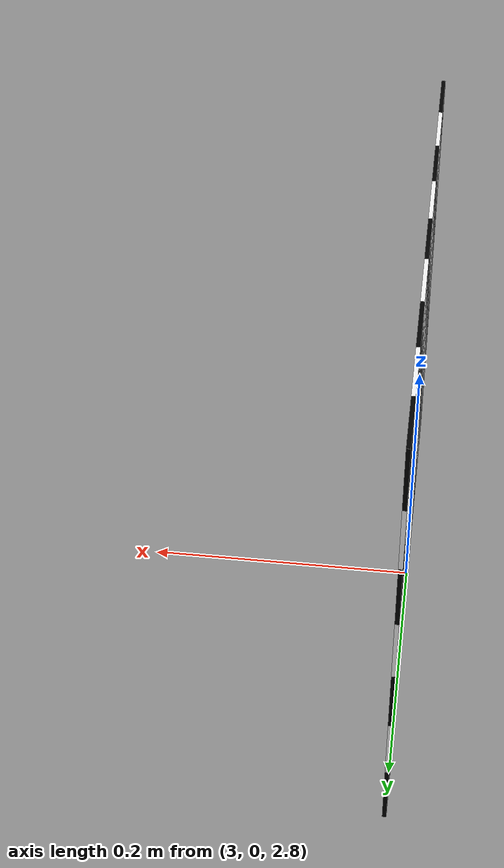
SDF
<sdf version="1.6">
 <world name="default">
  <light name="sun" type="directional">
   <pose>0 0 10 0 -0 0</pose>
   <diffuse>0.8 0.8 0.8 1</diffuse>
   <specular>0.2 0.2 0.2 1</specular>
   <attenuation>
    <range>1000</range>
    <constant>0.9</constant>
    <linear>0.01</linear>
    <quadratic>0.001</quadratic>
   </attenuation>
   <direction>-0.5 0.1 -0.9</direction>
  </light>
  <model name="ground_plane">
   <static>1</static>
   <link name="link">
    <collision name="collision">
     <geometry><plane><normal>0 0 1</normal><size>100 100</size></plane></geometry>
     <surface><friction><ode><mu>100</mu><mu2>50</mu2></ode></friction></surface>
    </collision>
    <visual name="visual">
     <cast_shadows>0</cast_shadows>
     <geometry><plane><normal>0 0 1</normal><size>100 100</size></plane></geometry>
     <material>
      <script><uri>file://media/materials/scripts/gazebo.material</uri><name>Gazebo/Grey</name></script>
     </material>
    </visual>
   </link>
  </model>
  <gravity>0 0 -9.8</gravity>
  <magnetic_field>6e-06 2.3e-05 -4.2e-05</magnetic_field>
  <atmosphere type="adiabatic"/>
  <physics name="default_physics" default="0" type="ode">
   <max_step_size>0.001</max_step_size>
   <real_time_factor>1</real_time_factor>
   <real_time_update_rate>1000</real_time_update_rate>
  </physics>
  <scene><ambient>0.4 0.4 0.4 1</ambient><background>0.7 0.7 0.7 1</background><shadows>1</shadows></scene>
  <spherical_coordinates>
   <surface_model>EARTH_WGS84</surface_model>
   <latitude_deg>0</latitude_deg>
   <longitude_deg>0</longitude_deg>
   <elevation>0</elevation>
   <heading_deg>0</heading_deg>
  </spherical_coordinates>
  <light name="user_point_light_0_clone" type="point">
   <pose>41.2892 -1.28374 3.74849 0 -0 0</pose>
   <diffuse>0.5 0.5 0.5 1</diffuse>
   <specular>0.1 0.1 0.1 1</specular>
   <direction>0 0 -1</direction>
   <attenuation>
    <range>20</range>
    <constant>0.5</constant>
    <linear>0.01</linear>
    <quadratic>0.001</quadratic>
   </attenuation>
  </light>
  <light name="user_point_light_0_clone_0" type="point">
   <pose>41.067 7.07823 3.74849 0 -0 0</pose>
   <diffuse>0.5 0.5 0.5 1</diffuse>
   <specular>0.1 0.1 0.1 1</specular>
   <direction>0 0 -1</direction>
   <attenuation>
    <range>20</range>
    <constant>0.5</constant>
    <linear>0.01</linear>
    <quadratic>0.001</quadratic>
   </attenuation>
  </light>
  <light name="user_point_light_0_clone_1" type="point">
   <pose>36.836 16.0083 3.74849 0 -0 0</pose>
   <diffuse>0.5 0.5 0.5 1</diffuse>
   <specular>0.1 0.1 0.1 1</specular>
   <direction>0 0 -1</direction>
   <attenuation>
    <range>20</range>
    <constant>0.5</constant>
    <linear>0.01</linear>
    <quadratic>0.001</quadratic>
   </attenuation>
  </light>
  <light name="user_point_light_0_clone_2" type="point">
   <pose>26.0986 16.0717 3.74849 0 -0 0</pose>
   <diffuse>0.5 0.5 0.5 1</diffuse>
   <specular>0.1 0.1 0.1 1</specular>
   <direction>0 0 -1</direction>
   <attenuation>
    <range>20</range>
    <constant>0.5</constant>
    <linear>0.01</linear>
    <quadratic>0.001</quadratic>
   </attenuation>
  </light>
  <light name="user_point_light_0_clone_3" type="point">
   <pose>21.2222 7.50988 3.74849 0 -0 0</pose>
   <diffuse>0.5 0.5 0.5 1</diffuse>
   <specular>0.1 0.1 0.1 1</specular>
   <direction>0 0 -1</direction>
   <attenuation>
    <range>20</range>
    <constant>0.5</constant>
    <linear>0.01</linear>
    <quadratic>0.001</quadratic>
   </attenuation>
  </light>
  <light name="user_point_light_0_clone_4" type="point">
   <pose>6.23348 7.75812 3.74849 0 -0 0</pose>
   <diffuse>0.5 0.5 0.5 1</diffuse>
   <specular>0.1 0.1 0.1 1</specular>
   <direction>0 0 -1</direction>
   <attenuation>
    <range>20</range>
    <constant>0.5</constant>
    <linear>0.01</linear>
    <quadratic>0.001</quadratic>
   </attenuation>
  </light>
  <light name="user_point_light_0_clone_5" type="point">
   <pose>5.95468 -7.08765 3.74849 0 -0 0</pose>
   <diffuse>0.5 0.5 0.5 1</diffuse>
   <specular>0.1 0.1 0.1 1</specular>
   <direction>0 0 -1</direction>
   <attenuation>
    <range>20</range>
    <constant>0.5</constant>
    <linear>0.01</linear>
    <quadratic>0.001</quadratic>
   </attenuation>
  </light>
  <light name="user_point_light_0_clone_6" type="point">
   <pose>20.8922 -6.83982 3.74849 0 -0 0</pose>
   <diffuse>0.5 0.5 0.5 1</diffuse>
   <specular>0.1 0.1 0.1 1</specular>
   <direction>0 0 -1</direction>
   <attenuation>
    <range>20</range>
    <constant>0.5</constant>
    <linear>0.01</linear>
    <quadratic>0.001</quadratic>
   </attenuation>
  </light>
  <light name="user_point_light_0_clone_7_clone" type="point">
   <pose>25.1086 -0.156805 3.74849 0 -0 0</pose>
   <diffuse>0.5 0.5 0.5 1</diffuse>
   <specular>0.1 0.1 0.1 1</specular>
   <direction>0 0 -1</direction>
   <attenuation>
    <range>20</range>
    <constant>0.5</constant>
    <linear>0.01</linear>
    <quadratic>0.001</quadratic>
   </attenuation>
  </light>
  <light name="user_point_light_0_clone_7_clone_0" type="point">
   <pose>11.7751 -0.264888 3.74849 0 -0 0</pose>
   <diffuse>0.5 0.5 0.5 1</diffuse>
   <specular>0.1 0.1 0.1 1</specular>
   <direction>0 0 -1</direction>
   <attenuation>
    <range>20</range>
    <constant>0.5</constant>
    <linear>0.01</linear>
    <quadratic>0.001</quadratic>
   </attenuation>
  </light>
  <light name="user_point_light_0_clone_4_clone" type="point">
   <pose>11.9047 12.6419 3.74849 0 -0 0</pose>
   <diffuse>0.5 0.5 0.5 1</diffuse>
   <specular>0.1 0.1 0.1 1</specular>
   <direction>0 0 -1</direction>
   <attenuation>
    <range>20</range>
    <constant>0.5</constant>
    <linear>0.01</linear>
    <quadratic>0.001</quadratic>
   </attenuation>
  </light>
  <light name="user_point_light_0_clone_4_clone_0" type="point">
   <pose>-0.642305 12.3625 3.74849 0 -0 0</pose>
   <diffuse>0.5 0.5 0.5 1</diffuse>
   <specular>0.1 0.1 0.1 1</specular>
   <direction>0 0 -1</direction>
   <attenuation>
    <range>20</range>
    <constant>0.5</constant>
    <linear>0.01</linear>
    <quadratic>0.001</quadratic>
   </attenuation>
  </light>
  <light name="user_point_light_0_clone_4_clone_1" type="point">
   <pose>35.0684 6.74355 3.74849 0 -0 0</pose>
   <diffuse>0.5 0.5 0.5 1</diffuse>
   <specular>0.1 0.1 0.1 1</specular>
   <direction>0 0 -1</direction>
   <attenuation>
    <range>20</range>
    <constant>0.5</constant>
    <linear>0.01</linear>
    <quadratic>0.001</quadratic>
   </attenuation>
  </light>
  <light name="user_point_light_0_clone_4_clone_2" type="point">
   <pose>20.9261 -24.8882 3.74849 0 -0 0</pose>
   <diffuse>0.5 0.5 0.5 1</diffuse>
   <specular>0.1 0.1 0.1 1</specular>
   <direction>0 0 -1</direction>
   <attenuation>
    <range>20</range>
    <constant>0.5</constant>
    <linear>0.01</linear>
    <quadratic>0.001</quadratic>
   </attenuation>
  </light>
  <light name="user_point_light_0_clone_4_clone_3" type="point">
   <pose>27.9062 27.4888 3.74849 0 -0 0</pose>
   <diffuse>0.5 0.5 0.5 1</diffuse>
   <specular>0.1 0.1 0.1 1</specular>
   <direction>0 0 -1</direction>
   <attenuation>
    <range>20</range>
    <constant>0.5</constant>
    <linear>0.01</linear>
    <quadratic>0.001</quadratic>
   </attenuation>
  </light>
  <light name="user_point_light_0_clone_4_clone_4" type="point">
   <pose>-7.63632 -0.001163 3.74849 0 -0 0</pose>
   <diffuse>0.5 0.5 0.5 1</diffuse>
   <specular>0.1 0.1 0.1 1</specular>
   <direction>0 0 -1</direction>
   <attenuation>
    <range>20</range>
    <constant>0.5</constant>
    <linear>0.01</linear>
    <quadratic>0.001</quadratic>
   </attenuation>
  </light>
  <model name="chessboard">
   <static>1</static>
   <pose>3 0 3 1.57 -0 1.57</pose>
   <link name="apriltag_body">
    <visual name="block0">
     <pose>-0.225 -0.225 0.001 0 -0 0</pose>
     <geometry><box><size>0.05 0.05 0.003</size></box></geometry>
     <material><ambient>0 0 0 1</ambient><diffuse>0 0 0 1</diffuse><specular>0 0 0 1</specular></material>
    </visual>
    <visual name="block1">
     <pose>-0.225 -0.175 0.001 0 -0 0</pose>
     <geometry><box><size>0.05 0.05 0.003</size></box></geometry>
     <material><ambient>1 1 1 1</ambient><diffuse>1 1 1 1</diffuse><specular>1 1 1 1</specular></material>
    </visual>
    <visual name="block2">
     <pose>-0.225 -0.125 0.001 0 -0 0</pose>
     <geometry><box><size>0.05 0.05 0.003</size></box></geometry>
     <material><ambient>0 0 0 1</ambient><diffuse>0 0 0 1</diffuse><specular>0 0 0 1</specular></material>
    </visual>
    <visual name="block3">
     <pose>-0.225 -0.075 0.001 0 -0 0</pose>
     <geometry><box><size>0.05 0.05 0.003</size></box></geometry>
     <material><ambient>1 1 1 1</ambient><diffuse>1 1 1 1</diffuse><specular>1 1 1 1</specular></material>
    </visual>
    <visual name="block4">
     <pose>-0.225 -0.025 0.001 0 -0 0</pose>
     <geometry><box><size>0.05 0.05 0.003</size></box></geometry>
     <material><ambient>0 0 0 1</ambient><diffuse>0 0 0 1</diffuse><specular>0 0 0 1</specular></material>
    </visual>
    <visual name="block5">
     <pose>-0.225 0.025 0.001 0 -0 0</pose>
     <geometry><box><size>0.05 0.05 0.003</size></box></geometry>
     <material><ambient>1 1 1 1</ambient><diffuse>1 1 1 1</diffuse><specular>1 1 1 1</specular></material>
    </visual>
    <visual name="block6">
     <pose>-0.225 0.075 0.001 0 -0 0</pose>
     <geometry><box><size>0.05 0.05 0.003</size></box></geometry>
     <material><ambient>0 0 0 1</ambient><diffuse>0 0 0 1</diffuse><specular>0 0 0 1</specular></material>
    </visual>
    <visual name="block9">
     <pose>-0.175 -0.225 0.001 0 -0 0</pose>
     <geometry><box><size>0.05 0.05 0.003</size></box></geometry>
     <material><ambient>1 1 1 1</ambient><diffuse>1 1 1 1</diffuse><specular>1 1 1 1</specular></material>
    </visual>
    <visual name="block10">
     <pose>-0.175 -0.175 0.001 0 -0 0</pose>
     <geometry><box><size>0.05 0.05 0.003</size></box></geometry>
     <material><ambient>0 0 0 1</ambient><diffuse>0 0 0 1</diffuse><specular>0 0 0 1</specular></material>
    </visual>
    <visual name="block11">
     <pose>-0.175 -0.125 0.001 0 -0 0</pose>
     <geometry><box><size>0.05 0.05 0.003</size></box></geometry>
     <material><ambient>1 1 1 1</ambient><diffuse>1 1 1 1</diffuse><specular>1 1 1 1</specular></material>
    </visual>
    <visual name="block12">
     <pose>-0.175 -0.075 0.001 0 -0 0</pose>
     <geometry><box><size>0.05 0.05 0.003</size></box></geometry>
     <material><ambient>0 0 0 1</ambient><diffuse>0 0 0 1</diffuse><specular>0 0 0 1</specular></material>
    </visual>
    <visual name="block13">
     <pose>-0.175 -0.025 0.001 0 -0 0</pose>
     <geometry><box><size>0.05 0.05 0.003</size></box></geometry>
     <material><ambient>1 1 1 1</ambient><diffuse>1 1 1 1</diffuse><specular>1 1 1 1</specular></material>
    </visual>
    <visual name="block14">
     <pose>-0.175 0.025 0.001 0 -0 0</pose>
     <geometry><box><size>0.05 0.05 0.003</size></box></geometry>
     <material><ambient>0 0 0 1</ambient><diffuse>0 0 0 1</diffuse><specular>0 0 0 1</specular></material>
    </visual>
    <visual name="block15">
     <pose>-0.175 0.075 0.001 0 -0 0</pose>
     <geometry><box><size>0.05 0.05 0.003</size></box></geometry>
     <material><ambient>1 1 1 1</ambient><diffuse>1 1 1 1</diffuse><specular>1 1 1 1</specular></material>
    </visual>
    <visual name="block18">
     <pose>-0.125 -0.225 0.001 0 -0 0</pose>
     <geometry><box><size>0.05 0.05 0.003</size></box></geometry>
     <material><ambient>0 0 0 1</ambient><diffuse>0 0 0 1</diffuse><specular>0 0 0 1</specular></material>
    </visual>
    <visual name="block19">
     <pose>-0.125 -0.175 0.001 0 -0 0</pose>
     <geometry><box><size>0.05 0.05 0.003</size></box></geometry>
     <material><ambient>1 1 1 1</ambient><diffuse>1 1 1 1</diffuse><specular>1 1 1 1</specular></material>
    </visual>
    <visual name="block20">
     <pose>-0.125 -0.125 0.001 0 -0 0</pose>
     <geometry><box><size>0.05 0.05 0.003</size></box></geometry>
     <material><ambient>0 0 0 1</ambient><diffuse>0 0 0 1</diffuse><specular>0 0 0 1</specular></material>
    </visual>
    <visual name="block21">
     <pose>-0.125 -0.075 0.001 0 -0 0</pose>
     <geometry><box><size>0.05 0.05 0.003</size></box></geometry>
     <material><ambient>1 1 1 1</ambient><diffuse>1 1 1 1</diffuse><specular>1 1 1 1</specular></material>
    </visual>
    <visual name="block22">
     <pose>-0.125 -0.025 0.001 0 -0 0</pose>
     <geometry><box><size>0.05 0.05 0.003</size></box></geometry>
     <material><ambient>0 0 0 1</ambient><diffuse>0 0 0 1</diffuse><specular>0 0 0 1</specular></material>
    </visual>
    <visual name="block23">
     <pose>-0.125 0.025 0.001 0 -0 0</pose>
     <geometry><box><size>0.05 0.05 0.003</size></box></geometry>
     <material><ambient>1 1 1 1</ambient><diffuse>1 1 1 1</diffuse><specular>1 1 1 1</specular></material>
    </visual>
    <visual name="block24">
     <pose>-0.125 0.075 0.001 0 -0 0</pose>
     <geometry><box><size>0.05 0.05 0.003</size></box></geometry>
     <material><ambient>0 0 0 1</ambient><diffuse>0 0 0 1</diffuse><specular>0 0 0 1</specular></material>
    </visual>
    <visual name="block27">
     <pose>-0.075 -0.225 0.001 0 -0 0</pose>
     <geometry><box><size>0.05 0.05 0.003</size></box></geometry>
     <material><ambient>1 1 1 1</ambient><diffuse>1 1 1 1</diffuse><specular>1 1 1 1</specular></material>
    </visual>
    <visual name="block28">
     <pose>-0.075 -0.175 0.001 0 -0 0</pose>
     <geometry><box><size>0.05 0.05 0.003</size></box></geometry>
     <material><ambient>0 0 0 1</ambient><diffuse>0 0 0 1</diffuse><specular>0 0 0 1</specular></material>
    </visual>
    <visual name="block29">
     <pose>-0.075 -0.125 0.001 0 -0 0</pose>
     <geometry><box><size>0.05 0.05 0.003</size></box></geometry>
     <material><ambient>1 1 1 1</ambient><diffuse>1 1 1 1</diffuse><specular>1 1 1 1</specular></material>
    </visual>
    <visual name="block30">
     <pose>-0.075 -0.075 0.001 0 -0 0</pose>
     <geometry><box><size>0.05 0.05 0.003</size></box></geometry>
     <material><ambient>0 0 0 1</ambient><diffuse>0 0 0 1</diffuse><specular>0 0 0 1</specular></material>
    </visual>
    <visual name="block31">
     <pose>-0.075 -0.025 0.001 0 -0 0</pose>
     <geometry><box><size>0.05 0.05 0.003</size></box></geometry>
     <material><ambient>1 1 1 1</ambient><diffuse>1 1 1 1</diffuse><specular>1 1 1 1</specular></material>
    </visual>
    <visual name="block32">
     <pose>-0.075 0.025 0.001 0 -0 0</pose>
     <geometry><box><size>0.05 0.05 0.003</size></box></geometry>
     <material><ambient>0 0 0 1</ambient><diffuse>0 0 0 1</diffuse><specular>0 0 0 1</specular></material>
    </visual>
    <visual name="block33">
     <pose>-0.075 0.075 0.001 0 -0 0</pose>
     <geometry><box><size>0.05 0.05 0.003</size></box></geometry>
     <material><ambient>1 1 1 1</ambient><diffuse>1 1 1 1</diffuse><specular>1 1 1 1</specular></material>
    </visual>
    <visual name="block36">
     <pose>-0.025 -0.225 0.001 0 -0 0</pose>
     <geometry><box><size>0.05 0.05 0.003</size></box></geometry>
     <material><ambient>0 0 0 1</ambient><diffuse>0 0 0 1</diffuse><specular>0 0 0 1</specular></material>
    </visual>
    <visual name="block37">
     <pose>-0.025 -0.175 0.001 0 -0 0</pose>
     <geometry><box><size>0.05 0.05 0.003</size></box></geometry>
     <material><ambient>1 1 1 1</ambient><diffuse>1 1 1 1</diffuse><specular>1 1 1 1</specular></material>
    </visual>
    <visual name="block38">
     <pose>-0.025 -0.125 0.001 0 -0 0</pose>
     <geometry><box><size>0.05 0.05 0.003</size></box></geometry>
     <material><ambient>0 0 0 1</ambient><diffuse>0 0 0 1</diffuse><specular>0 0 0 1</specular></material>
    </visual>
    <visual name="block39">
     <pose>-0.025 -0.075 0.001 0 -0 0</pose>
     <geometry><box><size>0.05 0.05 0.003</size></box></geometry>
     <material><ambient>1 1 1 1</ambient><diffuse>1 1 1 1</diffuse><specular>1 1 1 1</specular></material>
    </visual>
    <visual name="block40">
     <pose>-0.025 -0.025 0.001 0 -0 0</pose>
     <geometry><box><size>0.05 0.05 0.003</size></box></geometry>
     <material><ambient>0 0 0 1</ambient><diffuse>0 0 0 1</diffuse><specular>0 0 0 1</specular></material>
    </visual>
    <visual name="block41">
     <pose>-0.025 0.025 0.001 0 -0 0</pose>
     <geometry><box><size>0.05 0.05 0.003</size></box></geometry>
     <material><ambient>1 1 1 1</ambient><diffuse>1 1 1 1</diffuse><specular>1 1 1 1</specular></material>
    </visual>
    <visual name="block42">
     <pose>-0.025 0.075 0.001 0 -0 0</pose>
     <geometry><box><size>0.05 0.05 0.003</size></box></geometry>
     <material><ambient>0 0 0 1</ambient><diffuse>0 0 0 1</diffuse><specular>0 0 0 1</specular></material>
    </visual>
    <visual name="block45">
     <pose>0.025 -0.225 0.001 0 -0 0</pose>
     <geometry><box><size>0.05 0.05 0.003</size></box></geometry>
     <material><ambient>1 1 1 1</ambient><diffuse>1 1 1 1</diffuse><specular>1 1 1 1</specular></material>
    </visual>
    <visual name="block46">
     <pose>0.025 -0.175 0.001 0 -0 0</pose>
     <geometry><box><size>0.05 0.05 0.003</size></box></geometry>
     <material><ambient>0 0 0 1</ambient><diffuse>0 0 0 1</diffuse><specular>0 0 0 1</specular></material>
    </visual>
    <visual name="block47">
     <pose>0.025 -0.125 0.001 0 -0 0</pose>
     <geometry><box><size>0.05 0.05 0.003</size></box></geometry>
     <material><ambient>1 1 1 1</ambient><diffuse>1 1 1 1</diffuse><specular>1 1 1 1</specular></material>
    </visual>
    <visual name="block48">
     <pose>0.025 -0.075 0.001 0 -0 0</pose>
     <geometry><box><size>0.05 0.05 0.003</size></box></geometry>
     <material><ambient>0 0 0 1</ambient><diffuse>0 0 0 1</diffuse><specular>0 0 0 1</specular></material>
    </visual>
    <visual name="block49">
     <pose>0.025 -0.025 0.001 0 -0 0</pose>
     <geometry><box><size>0.05 0.05 0.003</size></box></geometry>
     <material><ambient>1 1 1 1</ambient><diffuse>1 1 1 1</diffuse><specular>1 1 1 1</specular></material>
    </visual>
    <visual name="block50">
     <pose>0.025 0.025 0.001 0 -0 0</pose>
     <geometry><box><size>0.05 0.05 0.003</size></box></geometry>
     <material><ambient>0 0 0 1</ambient><diffuse>0 0 0 1</diffuse><specular>0 0 0 1</specular></material>
    </visual>
    <visual name="block51">
     <pose>0.025 0.075 0.001 0 -0 0</pose>
     <geometry><box><size>0.05 0.05 0.003</size></box></geometry>
     <material><ambient>1 1 1 1</ambient><diffuse>1 1 1 1</diffuse><specular>1 1 1 1</specular></material>
    </visual>
    <visual name="block54">
     <pose>0.075 -0.225 0.001 0 -0 0</pose>
     <geometry><box><size>0.05 0.05 0.003</size></box></geometry>
     <material><ambient>0 0 0 1</ambient><diffuse>0 0 0 1</diffuse><specular>0 0 0 1</specular></material>
    </visual>
    <visual name="block55">
     <pose>0.075 -0.175 0.001 0 -0 0</pose>
     <geometry><box><size>0.05 0.05 0.003</size></box></geometry>
     <material><ambient>1 1 1 1</ambient><diffuse>1 1 1 1</diffuse><specular>1 1 1 1</specular></material>
    </visual>
    <visual name="block56">
     <pose>0.075 -0.125 0.001 0 -0 0</pose>
     <geometry><box><size>0.05 0.05 0.003</size></box></geometry>
     <material><ambient>0 0 0 1</ambient><diffuse>0 0 0 1</diffuse><specular>0 0 0 1</specular></material>
    </visual>
    <visual name="block57">
     <pose>0.075 -0.075 0.001 0 -0 0</pose>
     <geometry><box><size>0.05 0.05 0.003</size></box></geometry>
     <material><ambient>1 1 1 1</ambient><diffuse>1 1 1 1</diffuse><specular>1 1 1 1</specular></material>
    </visual>
    <visual name="block58">
     <pose>0.075 -0.025 0.001 0 -0 0</pose>
     <geometry><box><size>0.05 0.05 0.003</size></box></geometry>
     <material><ambient>0 0 0 1</ambient><diffuse>0 0 0 1</diffuse><specular>0 0 0 1</specular></material>
    </visual>
    <visual name="block59">
     <pose>0.075 0.025 0.001 0 -0 0</pose>
     <geometry><box><size>0.05 0.05 0.003</size></box></geometry>
     <material><ambient>1 1 1 1</ambient><diffuse>1 1 1 1</diffuse><specular>1 1 1 1</specular></material>
    </visual>
    <visual name="block60">
     <pose>0.075 0.075 0.001 0 -0 0</pose>
     <geometry><box><size>0.05 0.05 0.003</size></box></geometry>
     <material><ambient>0 0 0 1</ambient><diffuse>0 0 0 1</diffuse><specular>0 0 0 1</specular></material>
    </visual>
    <visual name="block63">
     <pose>0.125 -0.225 0.001 0 -0 0</pose>
     <geometry><box><size>0.05 0.05 0.003</size></box></geometry>
     <material><ambient>1 1 1 1</ambient><diffuse>1 1 1 1</diffuse><specular>1 1 1 1</specular></material>
    </visual>
    <visual name="block64">
     <pose>0.125 -0.175 0.001 0 -0 0</pose>
     <geometry><box><size>0.05 0.05 0.003</size></box></geometry>
     <material><ambient>0 0 0 1</ambient><diffuse>0 0 0 1</diffuse><specular>0 0 0 1</specular></material>
    </visual>
    <visual name="block65">
     <pose>0.125 -0.125 0.001 0 -0 0</pose>
     <geometry><box><size>0.05 0.05 0.003</size></box></geometry>
     <material><ambient>1 1 1 1</ambient><diffuse>1 1 1 1</diffuse><specular>1 1 1 1</specular></material>
    </visual>
    <visual name="block66">
     <pose>0.125 -0.075 0.001 0 -0 0</pose>
     <geometry><box><size>0.05 0.05 0.003</size></box></geometry>
     <material><ambient>0 0 0 1</ambient><diffuse>0 0 0 1</diffuse><specular>0 0 0 1</specular></material>
    </visual>
    <visual name="block67">
     <pose>0.125 -0.025 0.001 0 -0 0</pose>
     <geometry><box><size>0.05 0.05 0.003</size></box></geometry>
     <material><ambient>1 1 1 1</ambient><diffuse>1 1 1 1</diffuse><specular>1 1 1 1</specular></material>
    </visual>
    <visual name="block68">
     <pose>0.125 0.025 0.001 0 -0 0</pose>
     <geometry><box><size>0.05 0.05 0.003</size></box></geometry>
     <material><ambient>0 0 0 1</ambient><diffuse>0 0 0 1</diffuse><specular>0 0 0 1</specular></material>
    </visual>
    <visual name="block69">
     <pose>0.125 0.075 0.001 0 -0 0</pose>
     <geometry><box><size>0.05 0.05 0.003</size></box></geometry>
     <material><ambient>1 1 1 1</ambient><diffuse>1 1 1 1</diffuse><specular>1 1 1 1</specular></material>
    </visual>
    <visual name="block72">
     <pose>0.175 -0.225 0.001 0 -0 0</pose>
     <geometry><box><size>0.05 0.05 0.003</size></box></geometry>
     <material><ambient>0 0 0 1</ambient><diffuse>0 0 0 1</diffuse><specular>0 0 0 1</specular></material>
    </visual>
    <visual name="block73">
     <pose>0.175 -0.175 0.001 0 -0 0</pose>
     <geometry><box><size>0.05 0.05 0.003</size></box></geometry>
     <material><ambient>1 1 1 1</ambient><diffuse>1 1 1 1</diffuse><specular>1 1 1 1</specular></material>
    </visual>
    <visual name="block74">
     <pose>0.175 -0.125 0.001 0 -0 0</pose>
     <geometry><box><size>0.05 0.05 0.003</size></box></geometry>
     <material><ambient>0 0 0 1</ambient><diffuse>0 0 0 1</diffuse><specular>0 0 0 1</specular></material>
    </visual>
    <visual name="block75">
     <pose>0.175 -0.075 0.001 0 -0 0</pose>
     <geometry><box><size>0.05 0.05 0.003</size></box></geometry>
     <material><ambient>1 1 1 1</ambient><diffuse>1 1 1 1</diffuse><specular>1 1 1 1</specular></material>
    </visual>
    <visual name="block76">
     <pose>0.175 -0.025 0.001 0 -0 0</pose>
     <geometry><box><size>0.05 0.05 0.003</size></box></geometry>
     <material><ambient>0 0 0 1</ambient><diffuse>0 0 0 1</diffuse><specular>0 0 0 1</specular></material>
    </visual>
    <visual name="block77">
     <pose>0.175 0.025 0.001 0 -0 0</pose>
     <geometry><box><size>0.05 0.05 0.003</size></box></geometry>
     <material><ambient>1 1 1 1</ambient><diffuse>1 1 1 1</diffuse><specular>1 1 1 1</specular></material>
    </visual>
    <visual name="block78">
     <pose>0.175 0.075 0.001 0 -0 0</pose>
     <geometry><box><size>0.05 0.05 0.003</size></box></geometry>
     <material><ambient>0 0 0 1</ambient><diffuse>0 0 0 1</diffuse><specular>0 0 0 1</specular></material>
    </visual>
   </link>
  </model>
  <light name="user_point_light_0" type="point">
   <pose>0.619621 -0.029991 1 0 -0 0</pose>
   <diffuse>0.5 0.5 0.5 1</diffuse>
   <specular>0.1 0.1 0.1 1</specular>
   <attenuation>
    <range>20</range>
    <constant>0.5</constant>
    <linear>0.01</linear>
    <quadratic>0.001</quadratic>
   </attenuation>
   <cast_shadows>0</cast_shadows>
   <direction>0 0 -1</direction>
  </light>
 </world>
</sdf>
